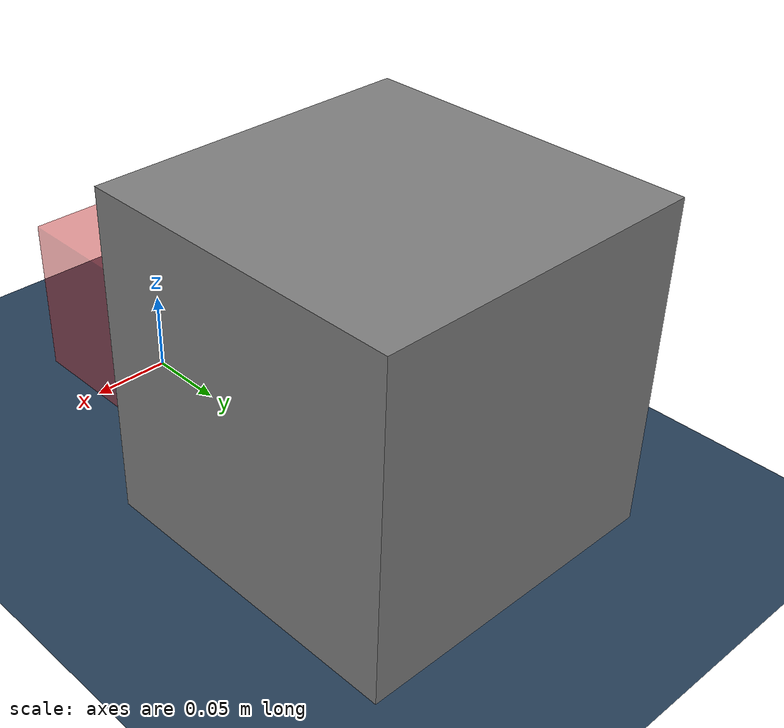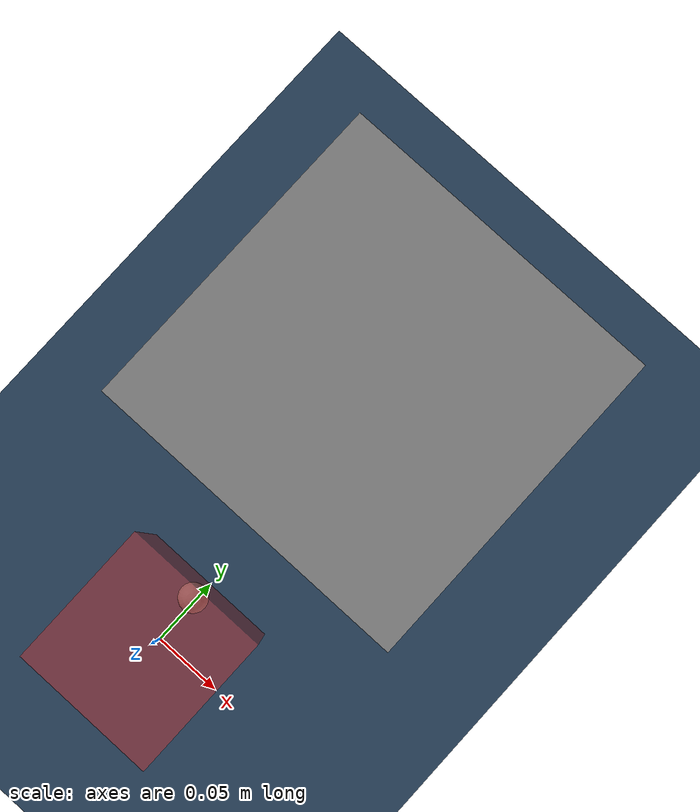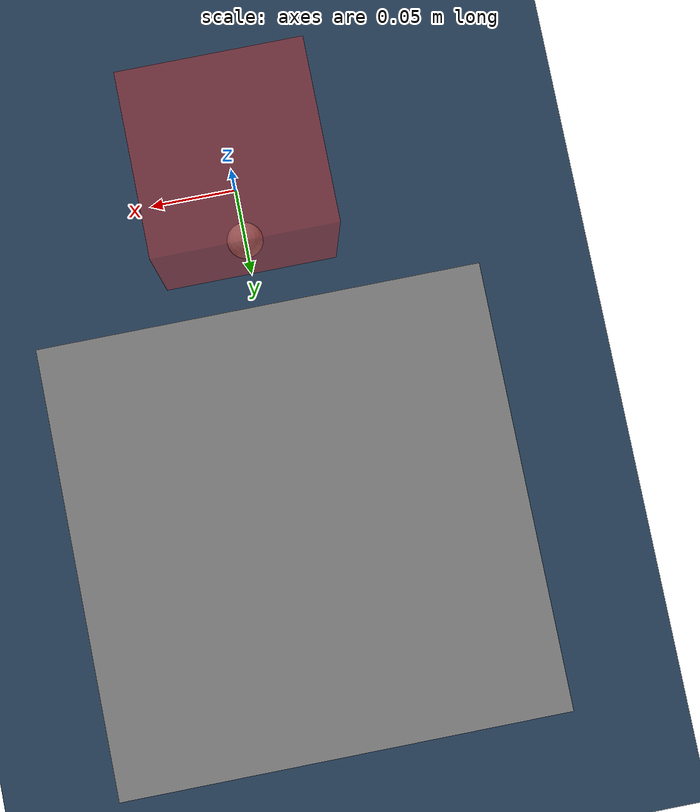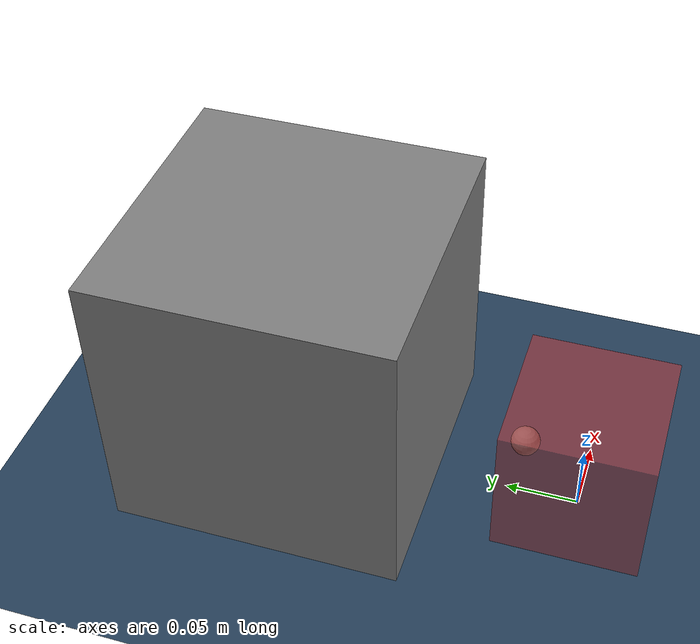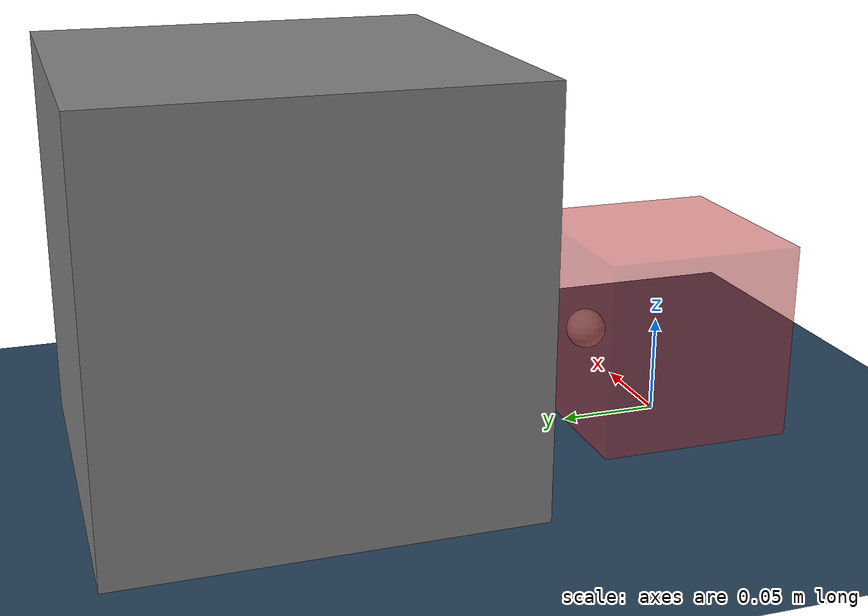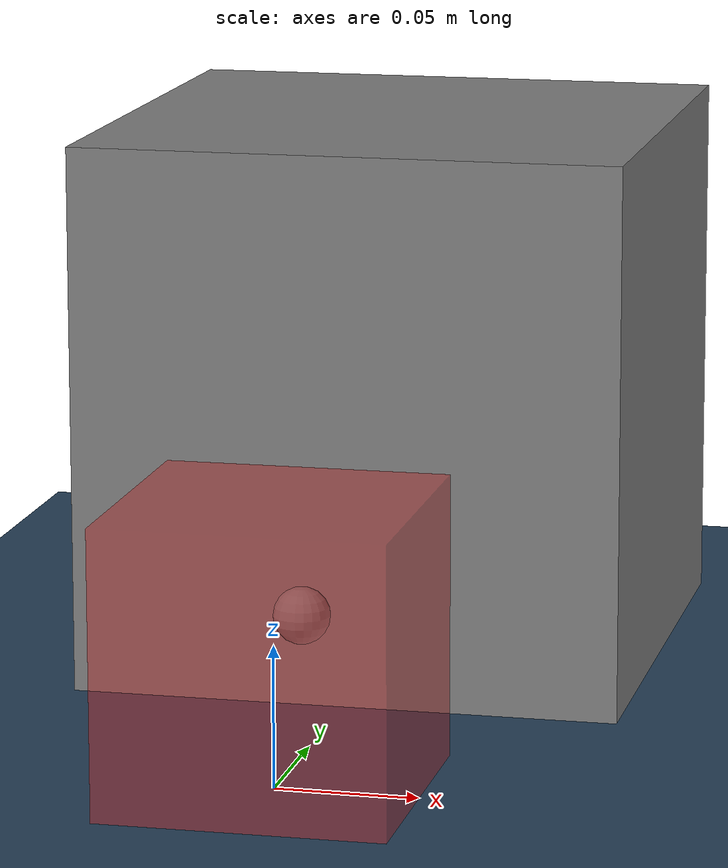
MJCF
<mujoco model="zippy scene">
  <include file="test_env.xml" />

  <statistic center="0 0 0.2" extent="0.6" />

  <visual>
    <headlight diffuse="0.6 0.6 0.6" ambient="0.3 0.3 0.3" specular="0 0 0" />
    <rgba haze="0.15 0.25 0.35 1" />
    <global azimuth="160" elevation="-20" />
  </visual>

  <asset>
    <texture type="skybox" builtin="gradient" rgb1="0.3 0.5 0.7" rgb2="0 0 0" width="512"
      height="3072" />
    <texture type="2d" name="groundplane" builtin="checker" mark="edge" rgb1="0.2 0.3 0.4"
      rgb2="0.1 0.2 0.3"
      markrgb="0.8 0.8 0.8" width="300" height="300" />
    <material name="groundplane" texture="groundplane" texuniform="true" texrepeat="5 5"
      reflectance="0.2" />
  </asset>

  <worldbody>
    <light pos="0 0 1.5" dir="0 0 -1" directional="true" />
    <geom name="floor" size="0 0 0.001" type="plane" material="groundplane" />
  </worldbody>
</mujoco>

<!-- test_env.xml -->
<mujoco model="onshape">
    <compiler angle="radian"/>

    <visual>
        <global offwidth="1920" offheight="1080"/>
    </visual>

    <worldbody>
        <!-- create a box geom-->
        <body name="box" pos="0 0.2 0.1">
            <geom name="metal_box" type="box" size="0.1 0.1 0.1" />
        </body>

        <body name="magnet_box" pos="0 0 0.05">
            <freejoint/>
            <geom name="mag_box" type="box" size="0.05 0.05 0.05" rgba="0.8 0.2 0.2 0.5"/>
            <geom name="mag_center" pos="0 0.04 0" type="sphere" size="0.01"/>
        </body>

    </worldbody>

</mujoco>
